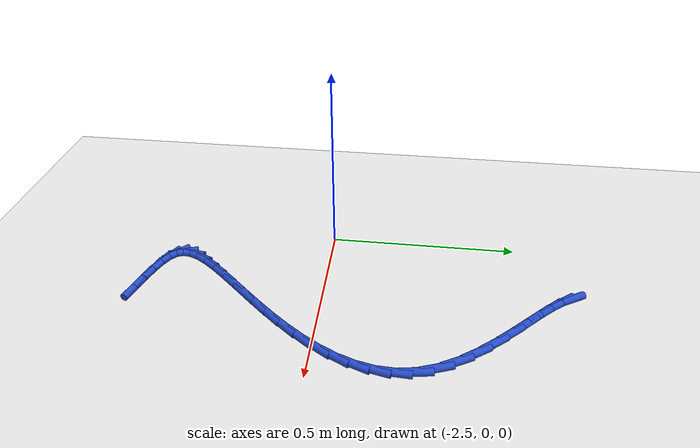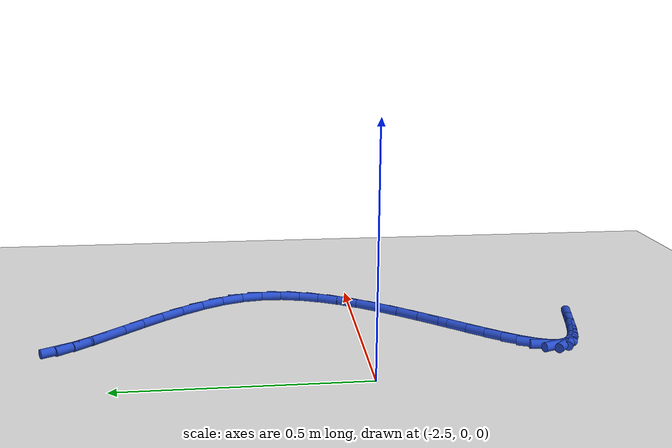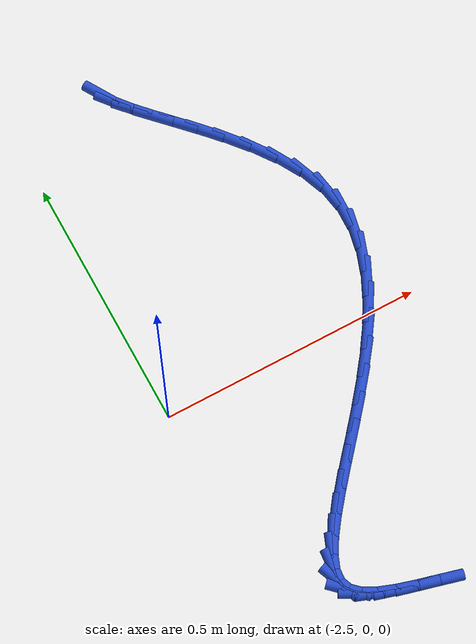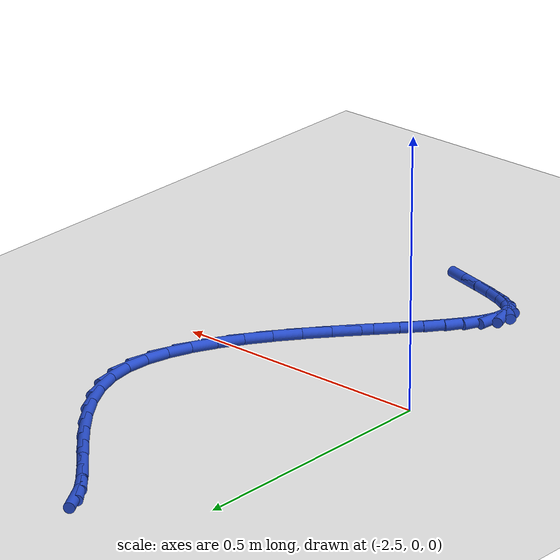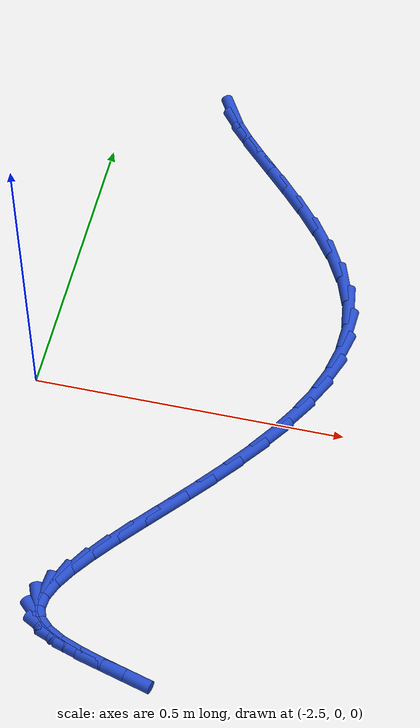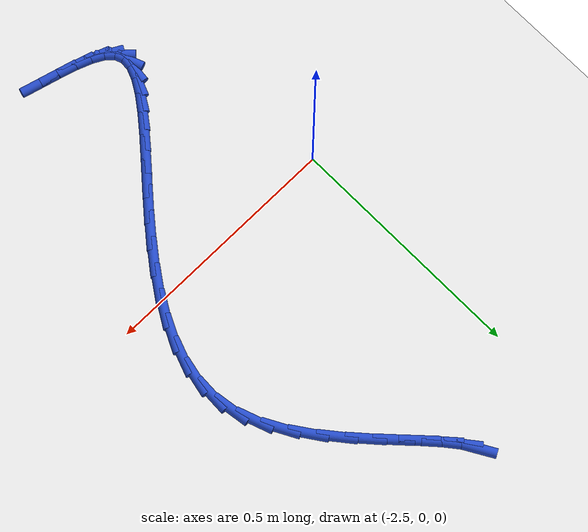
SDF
<sdf version="1.6">
 <world name="default">
  <model name="ground_plane">
   <static>1</static>
   <link name="link">
    <collision name="collision">
     <geometry><plane><normal>0 0 1</normal><size>100 100</size></plane></geometry>
     <surface><friction><ode><mu>100</mu><mu2>50</mu2></ode></friction></surface>
    </collision>
    <visual name="visual">
     <cast_shadows>0</cast_shadows>
     <geometry><plane><normal>0 0 1</normal><size>100 100</size></plane></geometry>
     <material>
      <script><uri>file://media/materials/scripts/gazebo.material</uri><name>Gazebo/WhiteGlow</name></script>
     </material>
    </visual>
   </link>
  </model>
  <model name="line">
   <link name="link_88">
    <pose>-2.3129771274279105 0.6241448328945437 0.01 0 1.57 -1.0497855653488857</pose>
    <collision name="collision">
     <geometry><cylinder><radius>0.01</radius><length>0.08</length></cylinder></geometry>
    </collision>
    <visual name="visual">
     <material>
      <script><name>Gazebo/Blue</name><uri>file://media/materials/scripts/gazebo.material</uri></script>
     </material>
     <geometry><cylinder><radius>0.01</radius><length>0.08</length></cylinder></geometry>
    </visual>
   </link>
   <link name="link_89">
    <pose>-2.2988105153960134 0.5994602268388609 0.01 0 1.57 -0.9029433997256386</pose>
    <collision name="collision">
     <geometry><cylinder><radius>0.01</radius><length>0.08</length></cylinder></geometry>
    </collision>
    <visual name="visual">
     <material>
      <script><name>Gazebo/Blue</name><uri>file://media/materials/scripts/gazebo.material</uri></script>
     </material>
     <geometry><cylinder><radius>0.01</radius><length>0.08</length></cylinder></geometry>
    </visual>
   </link>
   <link name="link_90">
    <pose>-2.2761712554295452 0.5707580799117309 0.01 0 1.57 -0.8384164140941982</pose>
    <collision name="collision">
     <geometry><cylinder><radius>0.01</radius><length>0.08</length></cylinder></geometry>
    </collision>
    <visual name="visual">
     <material>
      <script><name>Gazebo/Blue</name><uri>file://media/materials/scripts/gazebo.material</uri></script>
     </material>
     <geometry><cylinder><radius>0.01</radius><length>0.08</length></cylinder></geometry>
    </visual>
   </link>
   <link name="link_91">
    <pose>-2.247121094588639 0.5384518596465974 0.01 0 1.57 -0.8158333040651724</pose>
    <collision name="collision">
     <geometry><cylinder><radius>0.01</radius><length>0.08</length></cylinder></geometry>
    </collision>
    <visual name="visual">
     <material>
      <script><name>Gazebo/Blue</name><uri>file://media/materials/scripts/gazebo.material</uri></script>
     </material>
     <geometry><cylinder><radius>0.01</radius><length>0.08</length></cylinder></geometry>
    </visual>
   </link>
   <link name="link_92">
    <pose>-2.21372177993343 0.5029550335769043 0.01 0 1.57 -0.8203652320339906</pose>
    <collision name="collision">
     <geometry><cylinder><radius>0.01</radius><length>0.08</length></cylinder></geometry>
    </collision>
    <visual name="visual">
     <material>
      <script><name>Gazebo/Blue</name><uri>file://media/materials/scripts/gazebo.material</uri></script>
     </material>
     <geometry><cylinder><radius>0.01</radius><length>0.08</length></cylinder></geometry>
    </visual>
   </link>
   <link name="link_93">
    <pose>-2.1780350585240495 0.4646810692360962 0.01 0 1.57 -0.8470476096149685</pose>
    <collision name="collision">
     <geometry><cylinder><radius>0.01</radius><length>0.08</length></cylinder></geometry>
    </collision>
    <visual name="visual">
     <material>
      <script><name>Gazebo/Blue</name><uri>file://media/materials/scripts/gazebo.material</uri></script>
     </material>
     <geometry><cylinder><radius>0.01</radius><length>0.08</length></cylinder></geometry>
    </visual>
   </link>
   <link name="link_94">
    <pose>-2.142122677420631 0.42404343415761636 0.01 0 1.57 -0.895969153958599</pose>
    <collision name="collision">
     <geometry><cylinder><radius>0.01</radius><length>0.08</length></cylinder></geometry>
    </collision>
    <visual name="visual">
     <material>
      <script><name>Gazebo/Blue</name><uri>file://media/materials/scripts/gazebo.material</uri></script>
     </material>
     <geometry><cylinder><radius>0.01</radius><length>0.08</length></cylinder></geometry>
    </visual>
   </link>
   <link name="link_95">
    <pose>-2.108046383683308 0.38145559587490896 0.01 0 1.57 -0.9709319725961713</pose>
    <collision name="collision">
     <geometry><cylinder><radius>0.01</radius><length>0.08</length></cylinder></geometry>
    </collision>
    <visual name="visual">
     <material>
      <script><name>Gazebo/Blue</name><uri>file://media/materials/scripts/gazebo.material</uri></script>
     </material>
     <geometry><cylinder><radius>0.01</radius><length>0.08</length></cylinder></geometry>
    </visual>
   </link>
   <link name="link_96">
    <pose>-2.0778679243722156 0.3373310219214188 0.01 0 1.57 -1.0793484831736946</pose>
    <collision name="collision">
     <geometry><cylinder><radius>0.01</radius><length>0.08</length></cylinder></geometry>
    </collision>
    <visual name="visual">
     <material>
      <script><name>Gazebo/Blue</name><uri>file://media/materials/scripts/gazebo.material</uri></script>
     </material>
     <geometry><cylinder><radius>0.01</radius><length>0.08</length></cylinder></geometry>
    </visual>
   </link>
   <link name="link_97">
    <pose>-2.0536490465474837 0.2920831798305884 0.01 0 1.57 -1.2319448435361937</pose>
    <collision name="collision">
     <geometry><cylinder><radius>0.01</radius><length>0.08</length></cylinder></geometry>
    </collision>
    <visual name="visual">
     <material>
      <script><name>Gazebo/Blue</name><uri>file://media/materials/scripts/gazebo.material</uri></script>
     </material>
     <geometry><cylinder><radius>0.01</radius><length>0.08</length></cylinder></geometry>
    </visual>
   </link>
   <link name="link_98">
    <pose>-2.0374514972692483 0.24612553713586255 0.01 0 1.57 -1.4286982303385691</pose>
    <collision name="collision">
     <geometry><cylinder><radius>0.01</radius><length>0.08</length></cylinder></geometry>
    </collision>
    <visual name="visual">
     <material>
      <script><name>Gazebo/Blue</name><uri>file://media/materials/scripts/gazebo.material</uri></script>
     </material>
     <geometry><cylinder><radius>0.01</radius><length>0.08</length></cylinder></geometry>
    </visual>
   </link>
   <link name="link_99">
    <pose>-2.030829827300886 0.19984031545787262 0.01 0 1.57 1.519443703806421</pose>
    <collision name="collision">
     <geometry><cylinder><radius>0.01</radius><length>0.08</length></cylinder></geometry>
    </collision>
    <visual name="visual">
     <material>
      <script><name>Gazebo/Blue</name><uri>file://media/materials/scripts/gazebo.material</uri></script>
     </material>
     <geometry><cylinder><radius>0.01</radius><length>0.08</length></cylinder></geometry>
    </visual>
   </link>
   <link name="link_100">
    <pose>-2.0332127091919605 0.1534787713338226 0.01 0 1.57 1.3523769029066628</pose>
    <collision name="collision">
     <geometry><cylinder><radius>0.01</radius><length>0.08</length></cylinder></geometry>
    </collision>
    <visual name="visual">
     <material>
      <script><name>Gazebo/Blue</name><uri>file://media/materials/scripts/gazebo.material</uri></script>
     </material>
     <geometry><cylinder><radius>0.01</radius><length>0.08</length></cylinder></geometry>
    </visual>
   </link>
   <link name="link_101">
    <pose>-2.0434719221984357 0.10725785379628958 0.01 0 1.57 1.2156900335688239</pose>
    <collision name="collision">
     <geometry><cylinder><radius>0.01</radius><length>0.08</length></cylinder></geometry>
    </collision>
    <visual name="visual">
     <material>
      <script><name>Gazebo/Blue</name><uri>file://media/materials/scripts/gazebo.material</uri></script>
     </material>
     <geometry><cylinder><radius>0.01</radius><length>0.08</length></cylinder></geometry>
    </visual>
   </link>
   <link name="link_102">
    <pose>-2.0604792435654598 0.061394511753974014 0.01 0 1.57 1.1074526243338565</pose>
    <collision name="collision">
     <geometry><cylinder><radius>0.01</radius><length>0.08</length></cylinder></geometry>
    </collision>
    <visual name="visual">
     <material>
      <script><name>Gazebo/Blue</name><uri>file://media/materials/scripts/gazebo.material</uri></script>
     </material>
     <geometry><cylinder><radius>0.01</radius><length>0.08</length></cylinder></geometry>
    </visual>
   </link>
   <link name="link_103">
    <pose>-2.0831064505381827 0.016105694115576212 0.01 0 1.57 1.0234578575104338</pose>
    <collision name="collision">
     <geometry><cylinder><radius>0.01</radius><length>0.08</length></cylinder></geometry>
    </collision>
    <visual name="visual">
     <material>
      <script><name>Gazebo/Blue</name><uri>file://media/materials/scripts/gazebo.material</uri></script>
     </material>
     <geometry><cylinder><radius>0.01</radius><length>0.08</length></cylinder></geometry>
    </visual>
   </link>
   <link name="link_104">
    <pose>-2.1102253203617525 -0.02839165021020314 0.01 0 1.57 0.9594523371041428</pose>
    <collision name="collision">
     <geometry><cylinder><radius>0.01</radius><length>0.08</length></cylinder></geometry>
    </collision>
    <visual name="visual">
     <material>
      <script><name>Gazebo/Blue</name><uri>file://media/materials/scripts/gazebo.material</uri></script>
     </material>
     <geometry><cylinder><radius>0.01</radius><length>0.08</length></cylinder></geometry>
    </visual>
   </link>
   <link name="link_105">
    <pose>-2.140707630281319 -0.07188057231466351 0.01 0 1.57 0.912029366112415</pose>
    <collision name="collision">
     <geometry><cylinder><radius>0.01</radius><length>0.08</length></cylinder></geometry>
    </collision>
    <visual name="visual">
     <material>
      <script><name>Gazebo/Blue</name><uri>file://media/materials/scripts/gazebo.material</uri></script>
     </material>
     <geometry><cylinder><radius>0.01</radius><length>0.08</length></cylinder></geometry>
    </visual>
   </link>
   <link name="link_106">
    <pose>-2.1734251575420322 -0.1141441232891045 0.01 0 1.57 0.8788572791544478</pose>
    <collision name="collision">
     <geometry><cylinder><radius>0.01</radius><length>0.08</length></cylinder></geometry>
    </collision>
    <visual name="visual">
     <material>
      <script><name>Gazebo/Blue</name><uri>file://media/materials/scripts/gazebo.material</uri></script>
     </material>
     <geometry><cylinder><radius>0.01</radius><length>0.08</length></cylinder></geometry>
    </visual>
   </link>
   <link name="link_107">
    <pose>-2.207249679389042 -0.15496535422482555 0.01 0 1.57 0.8587079200238854</pose>
    <collision name="collision">
     <geometry><cylinder><radius>0.01</radius><length>0.08</length></cylinder></geometry>
    </collision>
    <visual name="visual">
     <material>
      <script><name>Gazebo/Blue</name><uri>file://media/materials/scripts/gazebo.material</uri></script>
     </material>
     <geometry><cylinder><radius>0.01</radius><length>0.08</length></cylinder></geometry>
    </visual>
   </link>
   <link name="link_108">
    <pose>-2.241052973067495 -0.1941273162131261 0.01 0 1.57 0.851528769088866</pose>
    <collision name="collision">
     <geometry><cylinder><radius>0.01</radius><length>0.08</length></cylinder></geometry>
    </collision>
    <visual name="visual">
     <material>
      <script><name>Gazebo/Blue</name><uri>file://media/materials/scripts/gazebo.material</uri></script>
     </material>
     <geometry><cylinder><radius>0.01</radius><length>0.08</length></cylinder></geometry>
    </visual>
   </link>
   <link name="link_109">
    <pose>-2.273706815822543 -0.23141306034530576 0.01 0 1.57 0.8587223270740424</pose>
    <collision name="collision">
     <geometry><cylinder><radius>0.01</radius><length>0.08</length></cylinder></geometry>
    </collision>
    <visual name="visual">
     <material>
      <script><name>Gazebo/Blue</name><uri>file://media/materials/scripts/gazebo.material</uri></script>
     </material>
     <geometry><cylinder><radius>0.01</radius><length>0.08</length></cylinder></geometry>
    </visual>
   </link>
   <link name="link_110">
    <pose>-2.304082984899335 -0.2666056377126639 0.01 0 1.57 0.8838576900114365</pose>
    <collision name="collision">
     <geometry><cylinder><radius>0.01</radius><length>0.08</length></cylinder></geometry>
    </collision>
    <visual name="visual">
     <material>
      <script><name>Gazebo/Blue</name><uri>file://media/materials/scripts/gazebo.material</uri></script>
     </material>
     <geometry><cylinder><radius>0.01</radius><length>0.08</length></cylinder></geometry>
    </visual>
   </link>
   <link name="link_111">
    <pose>-2.3310532575430196 -0.29948809940650006 0.01 0 1.57 0.9342975788860639</pose>
    <collision name="collision">
     <geometry><cylinder><radius>0.01</radius><length>0.08</length></cylinder></geometry>
    </collision>
    <visual name="visual">
     <material>
      <script><name>Gazebo/Blue</name><uri>file://media/materials/scripts/gazebo.material</uri></script>
     </material>
     <geometry><cylinder><radius>0.01</radius><length>0.08</length></cylinder></geometry>
    </visual>
   </link>
   <link name="link_112">
    <pose>-2.3534894109987468 -0.32984349651811384 0.01 0 1.57 1.0248831151900675</pose>
    <collision name="collision">
     <geometry><cylinder><radius>0.01</radius><length>0.08</length></cylinder></geometry>
    </collision>
    <visual name="visual">
     <material>
      <script><name>Gazebo/Blue</name><uri>file://media/materials/scripts/gazebo.material</uri></script>
     </material>
     <geometry><cylinder><radius>0.01</radius><length>0.08</length></cylinder></geometry>
    </visual>
   </link>
   <link name="link_113">
    <pose>-2.3702632225116647 -0.35745488013880455 0.01 0 1.57 1.1859931066188771</pose>
    <collision name="collision">
     <geometry><cylinder><radius>0.01</radius><length>0.08</length></cylinder></geometry>
    </collision>
    <visual name="visual">
     <material>
      <script><name>Gazebo/Blue</name><uri>file://media/materials/scripts/gazebo.material</uri></script>
     </material>
     <geometry><cylinder><radius>0.01</radius><length>0.08</length></cylinder></geometry>
    </visual>
   </link>
   <link name="link_114">
    <pose>-2.380246469326924 -0.3821053013598718 0.01 0 1.57 1.4749466417212056</pose>
    <collision name="collision">
     <geometry><cylinder><radius>0.01</radius><length>0.08</length></cylinder></geometry>
    </collision>
    <visual name="visual">
     <material>
      <script><name>Gazebo/Blue</name><uri>file://media/materials/scripts/gazebo.material</uri></script>
     </material>
     <geometry><cylinder><radius>0.01</radius><length>0.08</length></cylinder></geometry>
    </visual>
   </link>
   <link name="link_115">
    <pose>-2.382310928689674 -0.40357781127261505 0.01 0 1.57 -1.205431790452456</pose>
    <collision name="collision">
     <geometry><cylinder><radius>0.01</radius><length>0.08</length></cylinder></geometry>
    </collision>
    <visual name="visual">
     <material>
      <script><name>Gazebo/Blue</name><uri>file://media/materials/scripts/gazebo.material</uri></script>
     </material>
     <geometry><cylinder><radius>0.01</radius><length>0.08</length></cylinder></geometry>
    </visual>
   </link>
   <link name="link_116">
    <pose>-2.3753855021667225 -0.42168161392315534 0.01 0 1.57 -0.7592591750307908</pose>
    <collision name="collision">
     <geometry><cylinder><radius>0.01</radius><length>0.08</length></cylinder></geometry>
    </collision>
    <visual name="visual">
     <material>
      <script><name>Gazebo/Blue</name><uri>file://media/materials/scripts/gazebo.material</uri></script>
     </material>
     <geometry><cylinder><radius>0.01</radius><length>0.08</length></cylinder></geometry>
    </visual>
   </link>
   <link name="link_117">
    <pose>-2.3595196833552747 -0.4367389486443984 0.01 0 1.57 -0.4946423854205087</pose>
    <collision name="collision">
     <geometry><cylinder><radius>0.01</radius><length>0.08</length></cylinder></geometry>
    </collision>
    <visual name="visual">
     <material>
      <script><name>Gazebo/Blue</name><uri>file://media/materials/scripts/gazebo.material</uri></script>
     </material>
     <geometry><cylinder><radius>0.01</radius><length>0.08</length></cylinder></geometry>
    </visual>
   </link>
   <link name="link_118">
    <pose>-2.3357856675270576 -0.44954027338284785 0.01 0 1.57 -0.35641794255578696</pose>
    <collision name="collision">
     <geometry><cylinder><radius>0.01</radius><length>0.08</length></cylinder></geometry>
    </collision>
    <visual name="visual">
     <material>
      <script><name>Gazebo/Blue</name><uri>file://media/materials/scripts/gazebo.material</uri></script>
     </material>
     <geometry><cylinder><radius>0.01</radius><length>0.08</length></cylinder></geometry>
    </visual>
   </link>
   <link name="link_119">
    <pose>-2.305293144908517 -0.4608932122206983 0.01 0 1.57 -0.28814783029263374</pose>
    <collision name="collision">
     <geometry><cylinder><radius>0.01</radius><length>0.08</length></cylinder></geometry>
    </collision>
    <visual name="visual">
     <material>
      <script><name>Gazebo/Blue</name><uri>file://media/materials/scripts/gazebo.material</uri></script>
     </material>
     <geometry><cylinder><radius>0.01</radius><length>0.08</length></cylinder></geometry>
    </visual>
   </link>
   <link name="link_120">
    <pose>-2.269151805726099 -0.4716053892401439 0.01 0 1.57 -0.26131175487528846</pose>
    <collision name="collision">
     <geometry><cylinder><radius>0.01</radius><length>0.08</length></cylinder></geometry>
    </collision>
    <visual name="visual">
     <material>
      <script><name>Gazebo/Blue</name><uri>file://media/materials/scripts/gazebo.material</uri></script>
     </material>
     <geometry><cylinder><radius>0.01</radius><length>0.08</length></cylinder></geometry>
    </visual>
   </link>
   <link name="link_121">
    <pose>-2.2284713402062506 -0.48248442852337914 0.01 0 1.57 -0.26252503748166667</pose>
    <collision name="collision">
     <geometry><cylinder><radius>0.01</radius><length>0.08</length></cylinder></geometry>
    </collision>
    <visual name="visual">
     <material>
      <script><name>Gazebo/Blue</name><uri>file://media/materials/scripts/gazebo.material</uri></script>
     </material>
     <geometry><cylinder><radius>0.01</radius><length>0.08</length></cylinder></geometry>
    </visual>
   </link>
  </model>
 </world>
</sdf>
